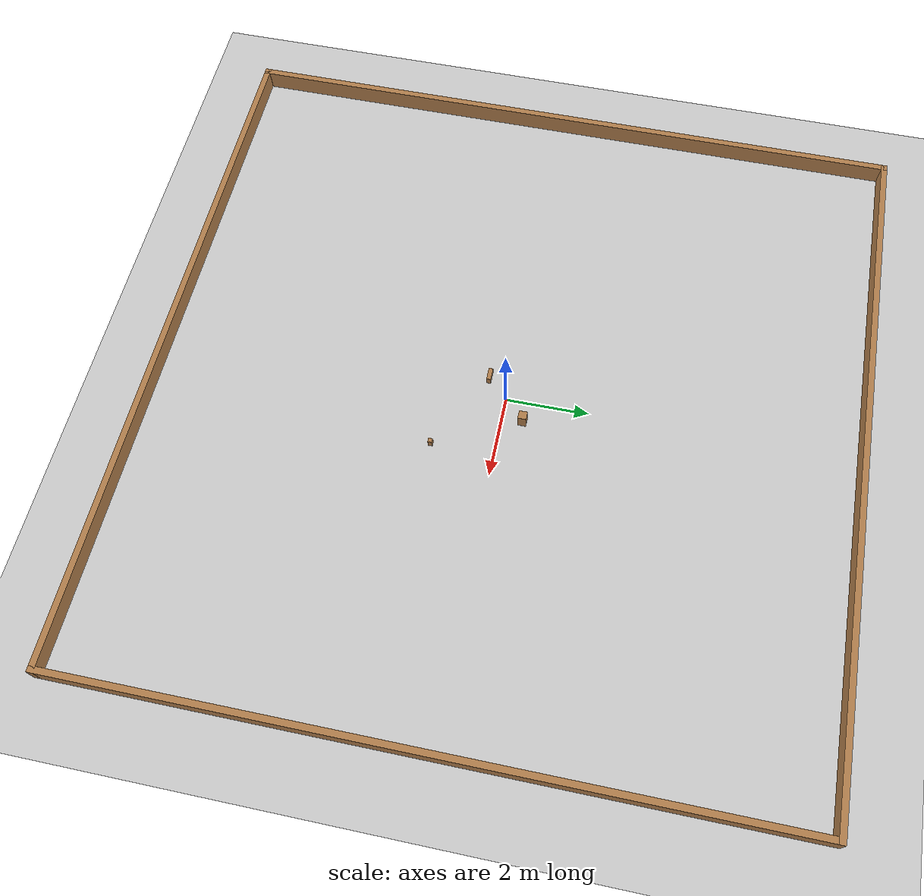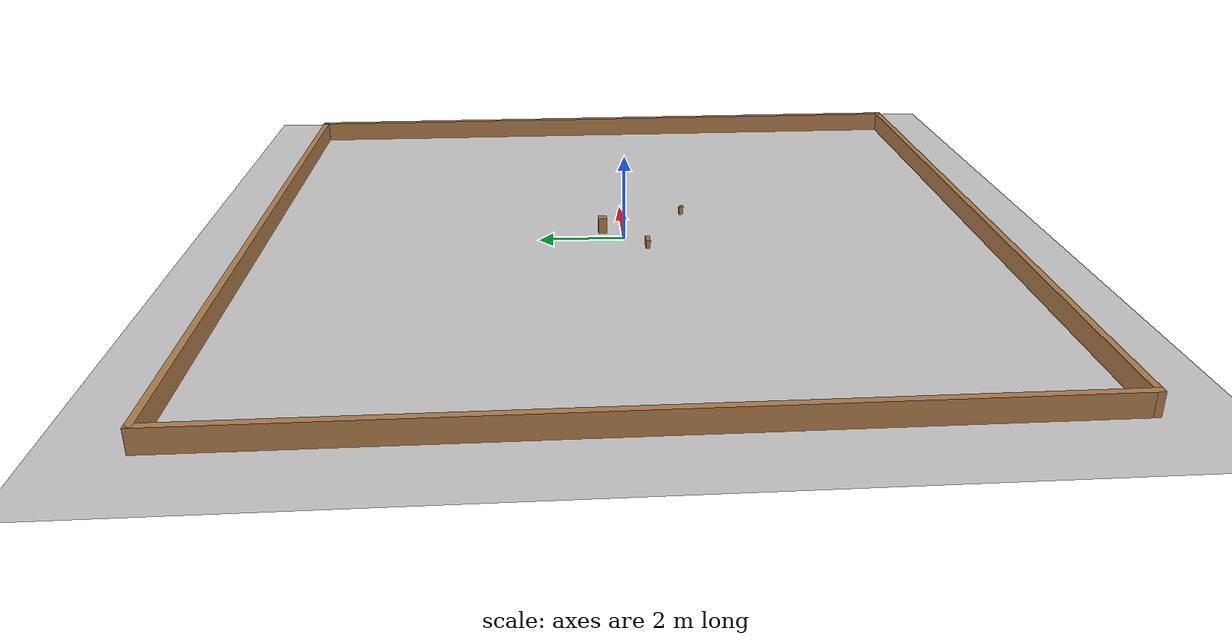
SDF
<sdf version="1.4">
 <world name="default">
  <include><uri>model://ground_plane</uri></include>
  <include><uri>model://sun</uri></include>
  <include><uri>model://turtlebot3_dqn_world</uri></include>
 </world>
</sdf>

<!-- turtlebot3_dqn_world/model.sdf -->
<sdf version='1.6'>
  <model name='turtlebot3_square'>
    <pose frame=''>0 0 0 0 0 0</pose>
    <link name='Wall_1'>
      <collision name='Wall_1_Collision'>
        <geometry>
          <box>
            <size>17 0.15 0.5</size>
          </box>
        </geometry>
        <pose frame=''>0 0 0.25 0 -0 0</pose>
      </collision>
      <visual name='Wall_1_Visual'>
        <pose frame=''>0 0 0.25 0 -0 0</pose>
        <geometry>
          <box>
            <size>17 0.15 0.5</size>
          </box>
        </geometry>
        <material>
          <script>
            <uri>file://media/materials/scripts/gazebo.material</uri>
            <name>Gazebo/Wood</name>
          </script>
          <ambient>1 1 1 1</ambient>
        </material>
      </visual>
      <pose frame=''>-8.425 0 0 0 -0 1.5708</pose>
    </link>
    <link name='Wall_2'>
      <collision name='Wall_2_Collision'>
        <geometry>
          <box>
            <size>17 0.15 0.5</size>
          </box>
        </geometry>
        <pose frame=''>0 0 0.25 0 -0 0</pose>
      </collision>
      <visual name='Wall_2_Visual'>
        <pose frame=''>0 0 0.25 0 -0 0</pose>
        <geometry>
          <box>
            <size>17 0.15 0.5</size>
          </box>
        </geometry>
        <material>
          <script>
            <uri>file://media/materials/scripts/gazebo.material</uri>
            <name>Gazebo/Wood</name>
          </script>
          <ambient>1 1 1 1</ambient>
        </material>
      </visual>
      <pose frame=''>0 8.425 0 0 -0 0</pose>
    </link>
    <link name='Wall_3'>
      <collision name='Wall_3_Collision'>
        <geometry>
          <box>
            <size>17 0.15 0.5</size>
          </box>
        </geometry>
        <pose frame=''>0 0 0.25 0 -0 0</pose>
      </collision>
      <visual name='Wall_3_Visual'>
        <pose frame=''>0 0 0.25 0 -0 0</pose>
        <geometry>
          <box>
            <size>17 0.15 0.5</size>
          </box>
        </geometry>
        <material>
          <script>
            <uri>file://media/materials/scripts/gazebo.material</uri>
            <name>Gazebo/Wood</name>
          </script>
          <ambient>1 1 1 1</ambient>
        </material>
      </visual>
      <pose frame=''>8.425 0 0 0 0 -1.5708</pose>
    </link>
    <link name='Wall_4'>
      <collision name='Wall_4_Collision'>
        <geometry>
          <box>
            <size>17 0.15 0.5</size>
          </box>
        </geometry>
        <pose frame=''>0 0 0.25 0 -0 0</pose>
      </collision>
      <visual name='Wall_4_Visual'>
        <pose frame=''>0 0 0.25 0 -0 0</pose>
        <geometry>
          <box>
            <size>17 0.15 0.5</size>
          </box>
        </geometry>
        <material>
          <script>
            <uri>file://media/materials/scripts/gazebo.material</uri>
            <name>Gazebo/Wood</name>
          </script>
          <ambient>1 1 1 1</ambient>
        </material>
      </visual>
      <pose frame=''>0 -8.425 0 0 -0 3.14159</pose>
    </link>
    <link name='Flow_Rack'>
      <collision name='Flow_Rack_Collision'>
        <geometry>
          <box>
            <size>0.1 0.1 0.2</size>
          </box>
        </geometry>
        <pose frame=''>0 0 0.1 0 -0 0</pose>
      </collision>
      <visual name='Flow_Rack_Visual'>
        <pose frame=''>0 0 0.1 0 -0 0</pose>
        <geometry>
          <box>
            <size>0.1 0.1 0.2</size>
          </box>
        </geometry>
        <material>
          <script>
            <uri>file://media/materials/scripts/gazebo.material</uri>
            <name>Gazebo/Wood</name>
          </script>
          <ambient>1 1 1 1</ambient>
        </material>
      </visual>
      <pose frame=''>1.5 -1.5 0 0 -0 3.14159</pose>
    </link>
    <link name='OBS2'>
      <collision name='OBS2_Collision'>
        <geometry>
          <box>
            <size>0.3 0.1 0.2</size>
          </box>
        </geometry>
        <pose frame=''>0 0 0.1 0 -0 0</pose>
      </collision>
      <visual name='OBS2_Visual'>
        <pose frame=''>0 0 0.1 0 -0 0</pose>
        <geometry>
          <box>
            <size>0.3 0.1 0.2</size>
          </box>
        </geometry>
        <material>
          <script>
            <uri>file://media/materials/scripts/gazebo.material</uri>
            <name>Gazebo/Wood</name>
          </script>
          <ambient>1 1 1 1</ambient>
        </material>
      </visual>
      <pose frame=''>-.5 -.5 0 0 -0 3.14159</pose>
    </link>
    <link name='OBS3'>
      <collision name='OBS3_Collision'>
        <geometry>
          <box>
            <size>0.2 0.2 0.5</size>
          </box>
        </geometry>
        <pose frame=''>0 0 0.1 0 -0 0</pose>
      </collision>
      <visual name='OBS3_Visual'>
        <pose frame=''>0 0 0.1 0 -0 0</pose>
        <geometry>
          <box>
            <size>0.2 0.2 0.5</size>
          </box>
        </geometry>
        <material>
          <script>
            <uri>file://media/materials/scripts/gazebo.material</uri>
            <name>Gazebo/Wood</name>
          </script>
          <ambient>1 1 1 1</ambient>
        </material>
      </visual>
      <pose frame=''>.5 .5 0 0 -0 3.14159</pose>
    </link>
    <static>1</static>
  </model>
</sdf>
